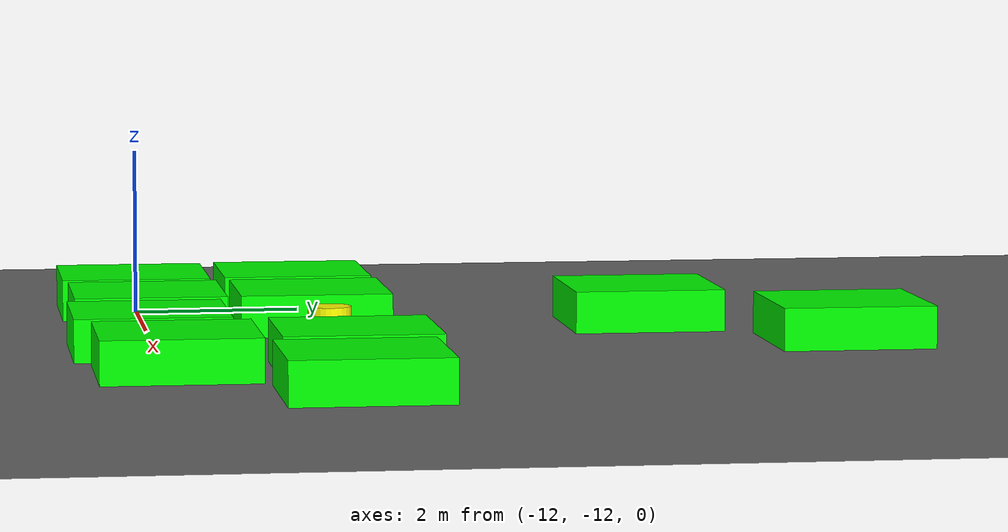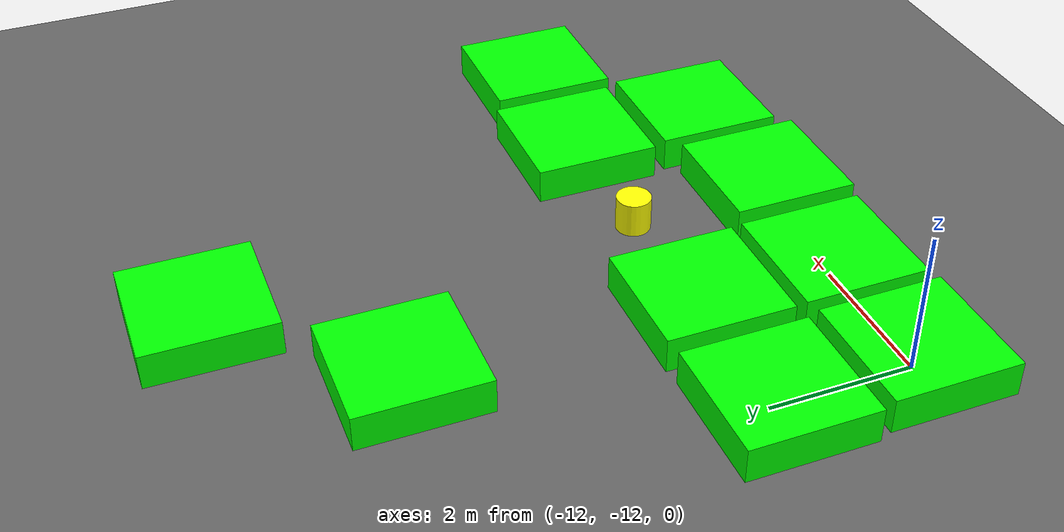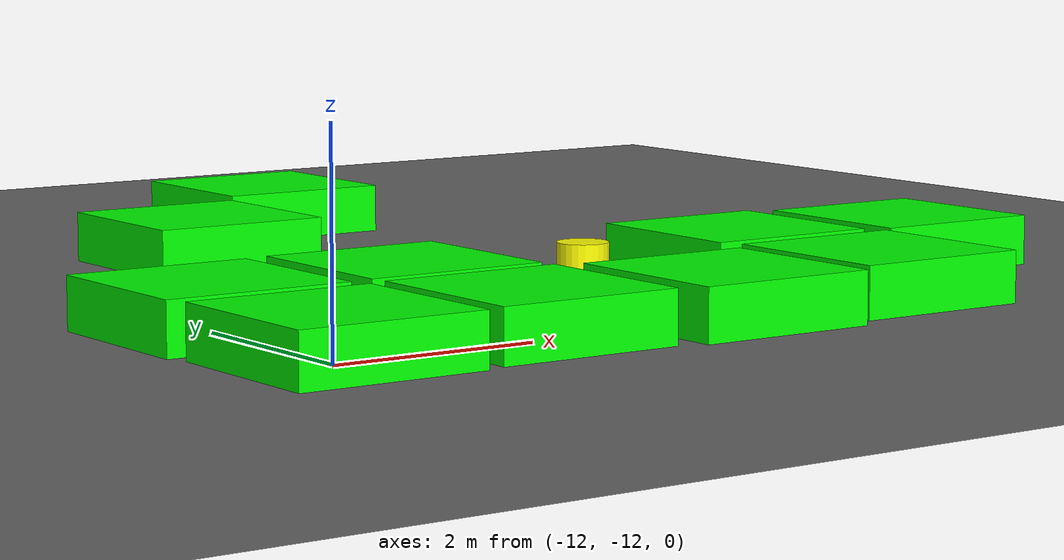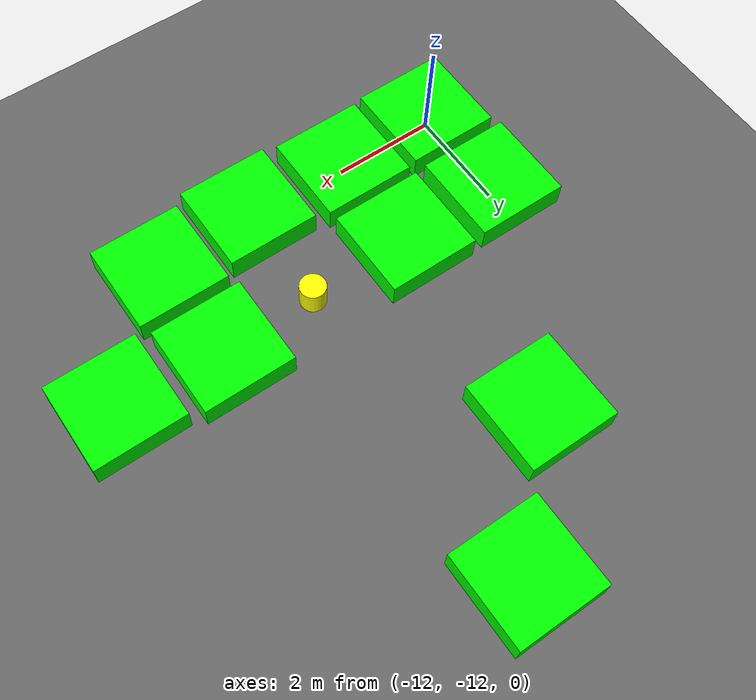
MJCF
<mujoco model="lvl5_deadend_obs10_dmid_depth1_seed1080">
    <compiler angle="degree" coordinate="local" inertiafromgeom="true"/>
    <option integrator="RK4" timestep="0.01"/>

    <asset>
        <texture builtin="gradient" height="100" rgb1="0.6 0.8 1" rgb2="0 0 0" type="skybox" width="100"/>
        <texture name="floor_texture" type="2d" builtin="checker" width="100" height="100" rgb1="0 0 0" rgb2="0.8 0.8 0.8"/>
        <material name="MatPlane" reflectance="0.5" shininess="1" specular="1" texrepeat="10 10" texture="floor_texture"/>
    </asset>

    <!-- Excluding the contact between the agent and the goal, and the agent and the floor -->
    <contact>
        <exclude body1="agent" body2="goal"/>
        <exclude body1 = "agent" body2 = "floor"/>
    </contact>

    <extension>
        <plugin plugin = "mujoco.pid">
            <instance name = "pid1">
                <config key="kp" value="2"/>
                <config key="ki" value="0"/>
                <config key="kd" value="55"/>
            </instance>
        </plugin>
    </extension>

    <worldbody>
        <light cutoff="100" diffuse="1 1 1" dir="-0 0 -1.3" directional="true" exponent="1" pos="0 0 1.3" specular=".1 .1 .1"/>
        <body name="floor" pos="0 0 0">
            <geom name="floor_geom" type="plane" size="20 20 0.1" material="MatPlane"/>
        </body>

                <body name="goal" pos="0.0000 0.0000 0">
            <geom name="goal_geom" type="plane" size="0.5 0.5 1" pos="0 0 0" rgba="1 0 0 1"/>
        </body>

                <body name="agent" pos="-8.0000 -10.0000 0.250">
            <joint name="j1" type="slide" axis ="1 0 0 "/>
            <joint name="j2" type="slide" axis ="0 1 0 "/>
            <geom name="agent_geom" type="cylinder" size="0.25 0.25 0.250" rgba="1 1 0 1"/>
        </body>

        <body name="obstacle1" pos="-7.9408 -3.9384 0.250">  <geom name="obstacle1_geom" type="box" size="0.9000 0.9000 0.250" rgba="0 1 0 1"/></body>
        <body name="obstacle2" pos="-9.9241 -6.0456 0.250">  <geom name="obstacle2_geom" type="box" size="0.9000 0.9000 0.250" rgba="0 1 0 1"/></body>
        <body name="obstacle3" pos="-12.0721 -10.0609 0.250">  <geom name="obstacle3_geom" type="box" size="0.9000 0.9000 0.250" rgba="0 1 0 1"/></body>
        <body name="obstacle4" pos="-10.0370 -10.0262 0.250">  <geom name="obstacle4_geom" type="box" size="0.9000 0.9000 0.250" rgba="0 1 0 1"/></body>
        <body name="obstacle5" pos="-6.0809 -9.9048 0.250">  <geom name="obstacle5_geom" type="box" size="0.9000 0.9000 0.250" rgba="0 1 0 1"/></body>
        <body name="obstacle6" pos="-4.0508 -10.0392 0.250">  <geom name="obstacle6_geom" type="box" size="0.9000 0.9000 0.250" rgba="0 1 0 1"/></body>
        <body name="obstacle7" pos="-11.9925 -12.0446 0.250">  <geom name="obstacle7_geom" type="box" size="0.9000 0.9000 0.250" rgba="0 1 0 1"/></body>
        <body name="obstacle8" pos="-10.0150 -11.9889 0.250">  <geom name="obstacle8_geom" type="box" size="0.9000 0.9000 0.250" rgba="0 1 0 1"/></body>
        <body name="obstacle9" pos="-7.9687 -12.0912 0.250">  <geom name="obstacle9_geom" type="box" size="0.9000 0.9000 0.250" rgba="0 1 0 1"/></body>
        <body name="obstacle10" pos="-5.9845 -11.9052 0.250">  <geom name="obstacle10_geom" type="box" size="0.9000 0.9000 0.250" rgba="0 1 0 1"/></body>

    </worldbody>

    <sensor>
<!-- SENSORS -->

        <distance name="dist1" geom1="agent_geom" geom2="obstacle1_geom" cutoff="1.5"/>
        <distance name="dist2" geom1="agent_geom" geom2="obstacle2_geom" cutoff="1.5"/>
        <distance name="dist3" geom1="agent_geom" geom2="obstacle3_geom" cutoff="1.5"/>
        <distance name="dist4" geom1="agent_geom" geom2="obstacle4_geom" cutoff="1.5"/>
        <distance name="dist5" geom1="agent_geom" geom2="obstacle5_geom" cutoff="1.5"/>
        <distance name="dist6" geom1="agent_geom" geom2="obstacle6_geom" cutoff="1.5"/>
        <distance name="dist7" geom1="agent_geom" geom2="obstacle7_geom" cutoff="1.5"/>
        <distance name="dist8" geom1="agent_geom" geom2="obstacle8_geom" cutoff="1.5"/>
        <distance name="dist9" geom1="agent_geom" geom2="obstacle9_geom" cutoff="1.5"/>
        <distance name="dist10" geom1="agent_geom" geom2="obstacle10_geom" cutoff="1.5"/>
</sensor>

    <actuator>
        <plugin joint="j1" plugin="mujoco.pid" instance="pid1" />
        <plugin joint="j2" plugin="mujoco.pid" instance="pid1"/>
    </actuator>
</mujoco>
